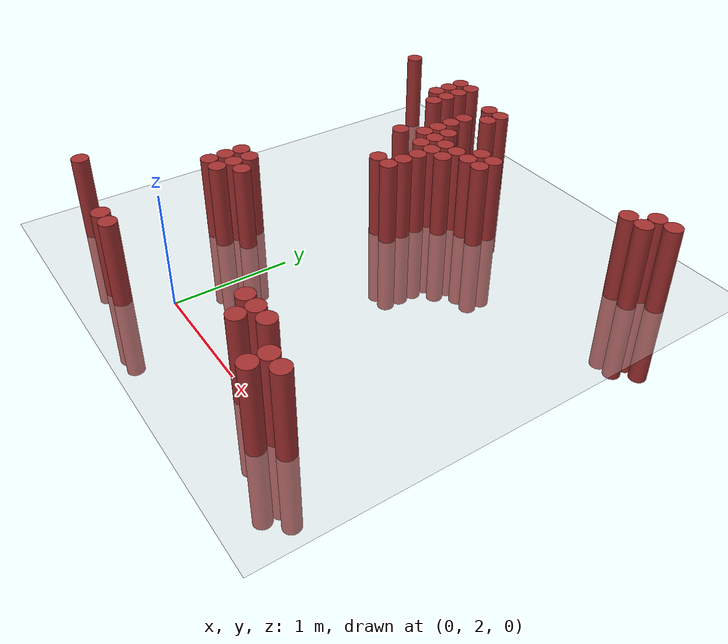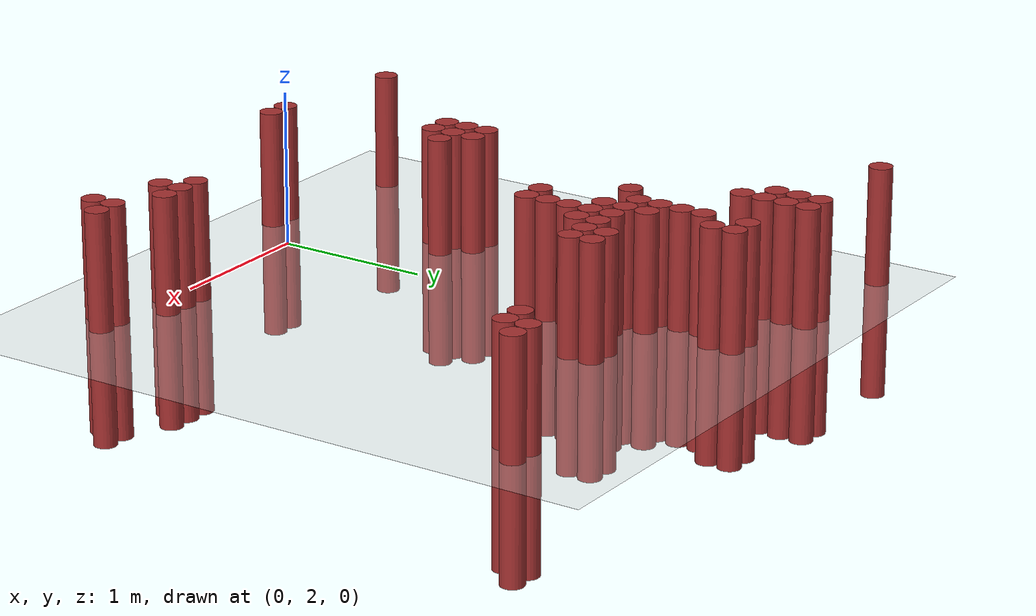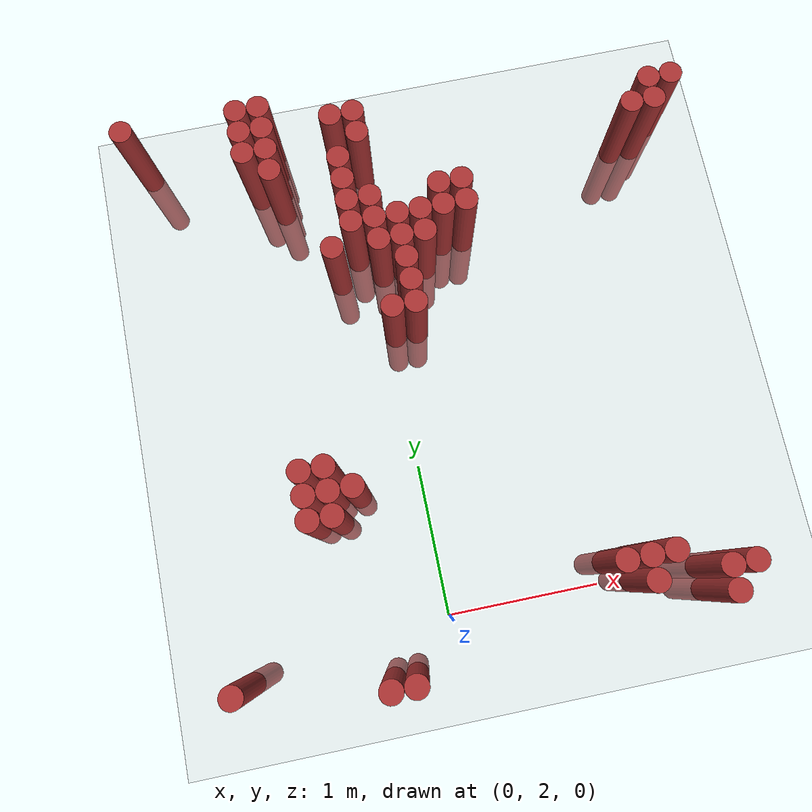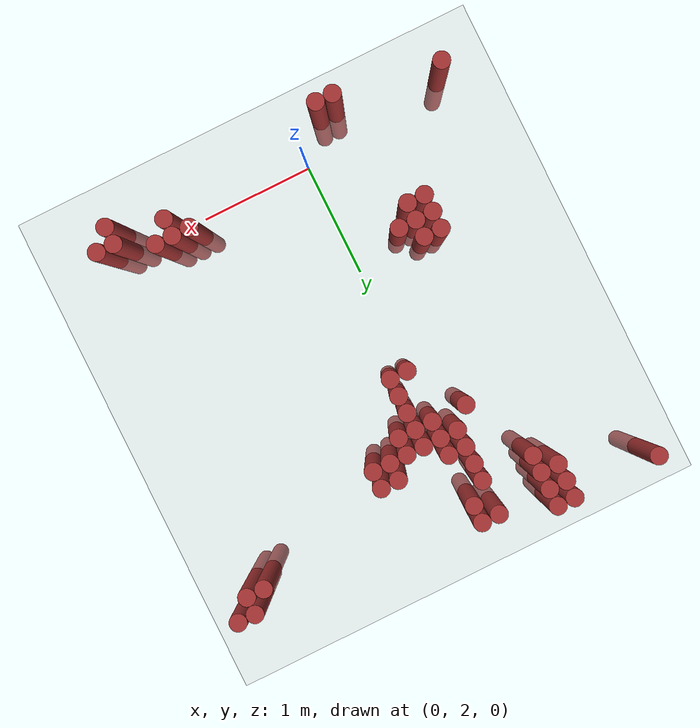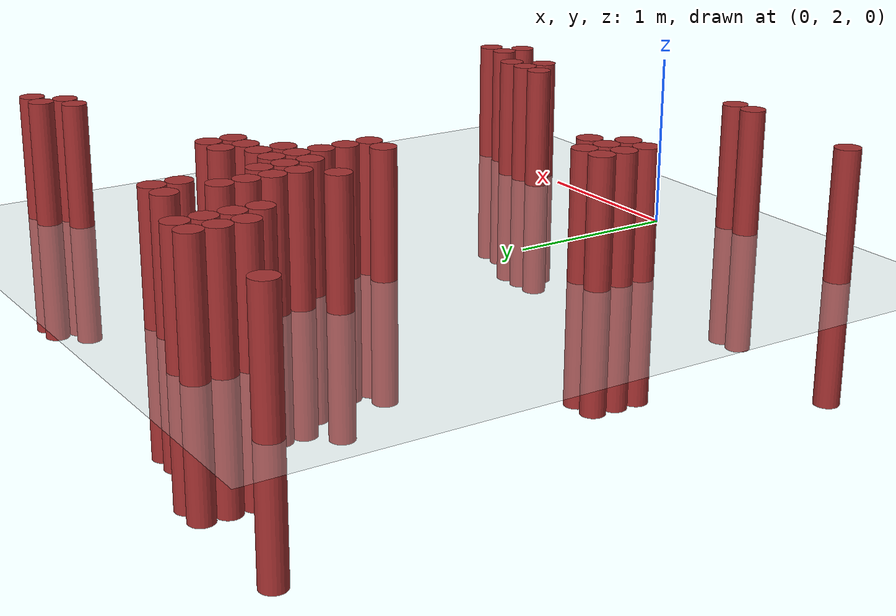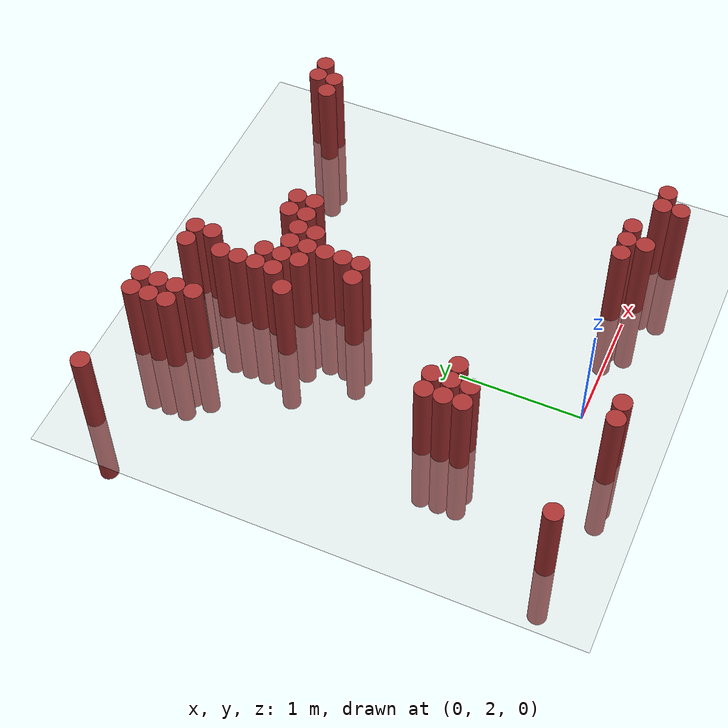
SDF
<sdf version="1.6">
 <world name="default">
  <model name="ground_plane">
   <static>1</static>
   <link name="link">
    <collision name="collision">
     <geometry><plane><normal>0 0 1</normal><size>100 100</size></plane></geometry>
     <surface><friction><ode><mu>100</mu><mu2>50</mu2></ode></friction></surface>
    </collision>
    <visual name="visual">
     <cast_shadows>0</cast_shadows>
     <geometry><plane><normal>0 0 1</normal><size>100 100</size></plane></geometry>
     <material>
      <script><uri>file://media/materials/scripts/gazebo.material</uri><name>Gazebo/Grey</name></script>
     </material>
    </visual>
   </link>
  </model>
  <model name="unit_cylinder_328">
   <static>1</static>
   <pose>-1.475000 5.425000 0.000000 0.000000 0.000000 0.000000</pose>
   <link name="link">
    <inertial>
     <mass>1</mass>
     <inertia><ixx>0.145833</ixx><ixy>0</ixy><ixz>0</ixz><iyy>0.145833</iyy><iyz>0</iyz><izz>0.125</izz></inertia>
    </inertial>
    <collision name="collision">
     <geometry><cylinder><radius>0.075000</radius><length>1.5</length></cylinder></geometry>
    </collision>
    <visual name="visual">
     <geometry><cylinder><radius>0.075000</radius><length>1.5</length></cylinder></geometry>
     <material>
      <ambient>0.648000 0.192000 0.192000 1</ambient>
      <diffuse>0.648000 0.192000 0.192000 1</diffuse>
     </material>
     <material>
      <script><name>Gazebo/Grey</name><uri>file://media/materials/scripts/gazebo.material</uri></script>
     </material>
    </visual>
   </link>
  </model>
  <model name="unit_cylinder_331">
   <static>1</static>
   <pose>-1.325000 1.825000 0.000000 0.000000 0.000000 0.000000</pose>
   <link name="link">
    <inertial>
     <mass>1</mass>
     <inertia><ixx>0.145833</ixx><ixy>0</ixy><ixz>0</ixz><iyy>0.145833</iyy><iyz>0</iyz><izz>0.125</izz></inertia>
    </inertial>
    <collision name="collision">
     <geometry><cylinder><radius>0.075000</radius><length>1.5</length></cylinder></geometry>
    </collision>
    <visual name="visual">
     <geometry><cylinder><radius>0.075000</radius><length>1.5</length></cylinder></geometry>
     <material>
      <ambient>0.648000 0.192000 0.192000 1</ambient>
      <diffuse>0.648000 0.192000 0.192000 1</diffuse>
     </material>
     <material>
      <script><name>Gazebo/Grey</name><uri>file://media/materials/scripts/gazebo.material</uri></script>
     </material>
    </visual>
   </link>
  </model>
  <model name="unit_cylinder_332">
   <static>1</static>
   <pose>-0.725000 2.725000 0.000000 0.000000 0.000000 0.000000</pose>
   <link name="link">
    <inertial>
     <mass>1</mass>
     <inertia><ixx>0.145833</ixx><ixy>0</ixy><ixz>0</ixz><iyy>0.145833</iyy><iyz>0</iyz><izz>0.125</izz></inertia>
    </inertial>
    <collision name="collision">
     <geometry><cylinder><radius>0.075000</radius><length>1.5</length></cylinder></geometry>
    </collision>
    <visual name="visual">
     <geometry><cylinder><radius>0.075000</radius><length>1.5</length></cylinder></geometry>
     <material>
      <ambient>0.648000 0.192000 0.192000 1</ambient>
      <diffuse>0.648000 0.192000 0.192000 1</diffuse>
     </material>
     <material>
      <script><name>Gazebo/Grey</name><uri>file://media/materials/scripts/gazebo.material</uri></script>
     </material>
    </visual>
   </link>
  </model>
  <model name="unit_cylinder_333">
   <static>1</static>
   <pose>-0.725000 2.875000 0.000000 0.000000 0.000000 0.000000</pose>
   <link name="link">
    <inertial>
     <mass>1</mass>
     <inertia><ixx>0.145833</ixx><ixy>0</ixy><ixz>0</ixz><iyy>0.145833</iyy><iyz>0</iyz><izz>0.125</izz></inertia>
    </inertial>
    <collision name="collision">
     <geometry><cylinder><radius>0.075000</radius><length>1.5</length></cylinder></geometry>
    </collision>
    <visual name="visual">
     <geometry><cylinder><radius>0.075000</radius><length>1.5</length></cylinder></geometry>
     <material>
      <ambient>0.648000 0.192000 0.192000 1</ambient>
      <diffuse>0.648000 0.192000 0.192000 1</diffuse>
     </material>
     <material>
      <script><name>Gazebo/Grey</name><uri>file://media/materials/scripts/gazebo.material</uri></script>
     </material>
    </visual>
   </link>
  </model>
  <model name="unit_cylinder_334">
   <static>1</static>
   <pose>-0.725000 3.025000 0.000000 0.000000 0.000000 0.000000</pose>
   <link name="link">
    <inertial>
     <mass>1</mass>
     <inertia><ixx>0.145833</ixx><ixy>0</ixy><ixz>0</ixz><iyy>0.145833</iyy><iyz>0</iyz><izz>0.125</izz></inertia>
    </inertial>
    <collision name="collision">
     <geometry><cylinder><radius>0.075000</radius><length>1.5</length></cylinder></geometry>
    </collision>
    <visual name="visual">
     <geometry><cylinder><radius>0.075000</radius><length>1.5</length></cylinder></geometry>
     <material>
      <ambient>0.648000 0.192000 0.192000 1</ambient>
      <diffuse>0.648000 0.192000 0.192000 1</diffuse>
     </material>
     <material>
      <script><name>Gazebo/Grey</name><uri>file://media/materials/scripts/gazebo.material</uri></script>
     </material>
    </visual>
   </link>
  </model>
  <model name="unit_cylinder_335">
   <static>1</static>
   <pose>-0.725000 5.125000 0.000000 0.000000 0.000000 0.000000</pose>
   <link name="link">
    <inertial>
     <mass>1</mass>
     <inertia><ixx>0.145833</ixx><ixy>0</ixy><ixz>0</ixz><iyy>0.145833</iyy><iyz>0</iyz><izz>0.125</izz></inertia>
    </inertial>
    <collision name="collision">
     <geometry><cylinder><radius>0.075000</radius><length>1.5</length></cylinder></geometry>
    </collision>
    <visual name="visual">
     <geometry><cylinder><radius>0.075000</radius><length>1.5</length></cylinder></geometry>
     <material>
      <ambient>0.648000 0.192000 0.192000 1</ambient>
      <diffuse>0.648000 0.192000 0.192000 1</diffuse>
     </material>
     <material>
      <script><name>Gazebo/Grey</name><uri>file://media/materials/scripts/gazebo.material</uri></script>
     </material>
    </visual>
   </link>
  </model>
  <model name="unit_cylinder_336">
   <static>1</static>
   <pose>-0.725000 5.275000 0.000000 0.000000 0.000000 0.000000</pose>
   <link name="link">
    <inertial>
     <mass>1</mass>
     <inertia><ixx>0.145833</ixx><ixy>0</ixy><ixz>0</ixz><iyy>0.145833</iyy><iyz>0</iyz><izz>0.125</izz></inertia>
    </inertial>
    <collision name="collision">
     <geometry><cylinder><radius>0.075000</radius><length>1.5</length></cylinder></geometry>
    </collision>
    <visual name="visual">
     <geometry><cylinder><radius>0.075000</radius><length>1.5</length></cylinder></geometry>
     <material>
      <ambient>0.648000 0.192000 0.192000 1</ambient>
      <diffuse>0.648000 0.192000 0.192000 1</diffuse>
     </material>
     <material>
      <script><name>Gazebo/Grey</name><uri>file://media/materials/scripts/gazebo.material</uri></script>
     </material>
    </visual>
   </link>
  </model>
  <model name="unit_cylinder_337">
   <static>1</static>
   <pose>-0.725000 5.425000 0.000000 0.000000 0.000000 0.000000</pose>
   <link name="link">
    <inertial>
     <mass>1</mass>
     <inertia><ixx>0.145833</ixx><ixy>0</ixy><ixz>0</ixz><iyy>0.145833</iyy><iyz>0</iyz><izz>0.125</izz></inertia>
    </inertial>
    <collision name="collision">
     <geometry><cylinder><radius>0.075000</radius><length>1.5</length></cylinder></geometry>
    </collision>
    <visual name="visual">
     <geometry><cylinder><radius>0.075000</radius><length>1.5</length></cylinder></geometry>
     <material>
      <ambient>0.648000 0.192000 0.192000 1</ambient>
      <diffuse>0.648000 0.192000 0.192000 1</diffuse>
     </material>
     <material>
      <script><name>Gazebo/Grey</name><uri>file://media/materials/scripts/gazebo.material</uri></script>
     </material>
    </visual>
   </link>
  </model>
  <model name="unit_cylinder_338">
   <static>1</static>
   <pose>-0.575000 2.725000 0.000000 0.000000 0.000000 0.000000</pose>
   <link name="link">
    <inertial>
     <mass>1</mass>
     <inertia><ixx>0.145833</ixx><ixy>0</ixy><ixz>0</ixz><iyy>0.145833</iyy><iyz>0</iyz><izz>0.125</izz></inertia>
    </inertial>
    <collision name="collision">
     <geometry><cylinder><radius>0.075000</radius><length>1.5</length></cylinder></geometry>
    </collision>
    <visual name="visual">
     <geometry><cylinder><radius>0.075000</radius><length>1.5</length></cylinder></geometry>
     <material>
      <ambient>0.648000 0.192000 0.192000 1</ambient>
      <diffuse>0.648000 0.192000 0.192000 1</diffuse>
     </material>
     <material>
      <script><name>Gazebo/Grey</name><uri>file://media/materials/scripts/gazebo.material</uri></script>
     </material>
    </visual>
   </link>
  </model>
  <model name="unit_cylinder_339">
   <static>1</static>
   <pose>-0.575000 2.875000 0.000000 0.000000 0.000000 0.000000</pose>
   <link name="link">
    <inertial>
     <mass>1</mass>
     <inertia><ixx>0.145833</ixx><ixy>0</ixy><ixz>0</ixz><iyy>0.145833</iyy><iyz>0</iyz><izz>0.125</izz></inertia>
    </inertial>
    <collision name="collision">
     <geometry><cylinder><radius>0.075000</radius><length>1.5</length></cylinder></geometry>
    </collision>
    <visual name="visual">
     <geometry><cylinder><radius>0.075000</radius><length>1.5</length></cylinder></geometry>
     <material>
      <ambient>0.648000 0.192000 0.192000 1</ambient>
      <diffuse>0.648000 0.192000 0.192000 1</diffuse>
     </material>
     <material>
      <script><name>Gazebo/Grey</name><uri>file://media/materials/scripts/gazebo.material</uri></script>
     </material>
    </visual>
   </link>
  </model>
  <model name="unit_cylinder_340">
   <static>1</static>
   <pose>-0.575000 3.025000 0.000000 0.000000 0.000000 0.000000</pose>
   <link name="link">
    <inertial>
     <mass>1</mass>
     <inertia><ixx>0.145833</ixx><ixy>0</ixy><ixz>0</ixz><iyy>0.145833</iyy><iyz>0</iyz><izz>0.125</izz></inertia>
    </inertial>
    <collision name="collision">
     <geometry><cylinder><radius>0.075000</radius><length>1.5</length></cylinder></geometry>
    </collision>
    <visual name="visual">
     <geometry><cylinder><radius>0.075000</radius><length>1.5</length></cylinder></geometry>
     <material>
      <ambient>0.648000 0.192000 0.192000 1</ambient>
      <diffuse>0.648000 0.192000 0.192000 1</diffuse>
     </material>
     <material>
      <script><name>Gazebo/Grey</name><uri>file://media/materials/scripts/gazebo.material</uri></script>
     </material>
    </visual>
   </link>
  </model>
  <model name="unit_cylinder_341">
   <static>1</static>
   <pose>-0.575000 4.975000 0.000000 0.000000 0.000000 0.000000</pose>
   <link name="link">
    <inertial>
     <mass>1</mass>
     <inertia><ixx>0.145833</ixx><ixy>0</ixy><ixz>0</ixz><iyy>0.145833</iyy><iyz>0</iyz><izz>0.125</izz></inertia>
    </inertial>
    <collision name="collision">
     <geometry><cylinder><radius>0.075000</radius><length>1.5</length></cylinder></geometry>
    </collision>
    <visual name="visual">
     <geometry><cylinder><radius>0.075000</radius><length>1.5</length></cylinder></geometry>
     <material>
      <ambient>0.648000 0.192000 0.192000 1</ambient>
      <diffuse>0.648000 0.192000 0.192000 1</diffuse>
     </material>
     <material>
      <script><name>Gazebo/Grey</name><uri>file://media/materials/scripts/gazebo.material</uri></script>
     </material>
    </visual>
   </link>
  </model>
  <model name="unit_cylinder_342">
   <static>1</static>
   <pose>-0.575000 5.125000 0.000000 0.000000 0.000000 0.000000</pose>
   <link name="link">
    <inertial>
     <mass>1</mass>
     <inertia><ixx>0.145833</ixx><ixy>0</ixy><ixz>0</ixz><iyy>0.145833</iyy><iyz>0</iyz><izz>0.125</izz></inertia>
    </inertial>
    <collision name="collision">
     <geometry><cylinder><radius>0.075000</radius><length>1.5</length></cylinder></geometry>
    </collision>
    <visual name="visual">
     <geometry><cylinder><radius>0.075000</radius><length>1.5</length></cylinder></geometry>
     <material>
      <ambient>0.648000 0.192000 0.192000 1</ambient>
      <diffuse>0.648000 0.192000 0.192000 1</diffuse>
     </material>
     <material>
      <script><name>Gazebo/Grey</name><uri>file://media/materials/scripts/gazebo.material</uri></script>
     </material>
    </visual>
   </link>
  </model>
  <model name="unit_cylinder_343">
   <static>1</static>
   <pose>-0.575000 5.275000 0.000000 0.000000 0.000000 0.000000</pose>
   <link name="link">
    <inertial>
     <mass>1</mass>
     <inertia><ixx>0.145833</ixx><ixy>0</ixy><ixz>0</ixz><iyy>0.145833</iyy><iyz>0</iyz><izz>0.125</izz></inertia>
    </inertial>
    <collision name="collision">
     <geometry><cylinder><radius>0.075000</radius><length>1.5</length></cylinder></geometry>
    </collision>
    <visual name="visual">
     <geometry><cylinder><radius>0.075000</radius><length>1.5</length></cylinder></geometry>
     <material>
      <ambient>0.648000 0.192000 0.192000 1</ambient>
      <diffuse>0.648000 0.192000 0.192000 1</diffuse>
     </material>
     <material>
      <script><name>Gazebo/Grey</name><uri>file://media/materials/scripts/gazebo.material</uri></script>
     </material>
    </visual>
   </link>
  </model>
  <model name="unit_cylinder_344">
   <static>1</static>
   <pose>-0.575000 5.425000 0.000000 0.000000 0.000000 0.000000</pose>
   <link name="link">
    <inertial>
     <mass>1</mass>
     <inertia><ixx>0.145833</ixx><ixy>0</ixy><ixz>0</ixz><iyy>0.145833</iyy><iyz>0</iyz><izz>0.125</izz></inertia>
    </inertial>
    <collision name="collision">
     <geometry><cylinder><radius>0.075000</radius><length>1.5</length></cylinder></geometry>
    </collision>
    <visual name="visual">
     <geometry><cylinder><radius>0.075000</radius><length>1.5</length></cylinder></geometry>
     <material>
      <ambient>0.648000 0.192000 0.192000 1</ambient>
      <diffuse>0.648000 0.192000 0.192000 1</diffuse>
     </material>
     <material>
      <script><name>Gazebo/Grey</name><uri>file://media/materials/scripts/gazebo.material</uri></script>
     </material>
    </visual>
   </link>
  </model>
  <model name="unit_cylinder_346">
   <static>1</static>
   <pose>-0.425000 1.675000 0.000000 0.000000 0.000000 0.000000</pose>
   <link name="link">
    <inertial>
     <mass>1</mass>
     <inertia><ixx>0.145833</ixx><ixy>0</ixy><ixz>0</ixz><iyy>0.145833</iyy><iyz>0</iyz><izz>0.125</izz></inertia>
    </inertial>
    <collision name="collision">
     <geometry><cylinder><radius>0.075000</radius><length>1.5</length></cylinder></geometry>
    </collision>
    <visual name="visual">
     <geometry><cylinder><radius>0.075000</radius><length>1.5</length></cylinder></geometry>
     <material>
      <ambient>0.648000 0.192000 0.192000 1</ambient>
      <diffuse>0.648000 0.192000 0.192000 1</diffuse>
     </material>
     <material>
      <script><name>Gazebo/Grey</name><uri>file://media/materials/scripts/gazebo.material</uri></script>
     </material>
    </visual>
   </link>
  </model>
  <model name="unit_cylinder_347">
   <static>1</static>
   <pose>-0.425000 2.875000 0.000000 0.000000 0.000000 0.000000</pose>
   <link name="link">
    <inertial>
     <mass>1</mass>
     <inertia><ixx>0.145833</ixx><ixy>0</ixy><ixz>0</ixz><iyy>0.145833</iyy><iyz>0</iyz><izz>0.125</izz></inertia>
    </inertial>
    <collision name="collision">
     <geometry><cylinder><radius>0.075000</radius><length>1.5</length></cylinder></geometry>
    </collision>
    <visual name="visual">
     <geometry><cylinder><radius>0.075000</radius><length>1.5</length></cylinder></geometry>
     <material>
      <ambient>0.648000 0.192000 0.192000 1</ambient>
      <diffuse>0.648000 0.192000 0.192000 1</diffuse>
     </material>
     <material>
      <script><name>Gazebo/Grey</name><uri>file://media/materials/scripts/gazebo.material</uri></script>
     </material>
    </visual>
   </link>
  </model>
  <model name="unit_cylinder_350">
   <static>1</static>
   <pose>-0.275000 1.675000 0.000000 0.000000 0.000000 0.000000</pose>
   <link name="link">
    <inertial>
     <mass>1</mass>
     <inertia><ixx>0.145833</ixx><ixy>0</ixy><ixz>0</ixz><iyy>0.145833</iyy><iyz>0</iyz><izz>0.125</izz></inertia>
    </inertial>
    <collision name="collision">
     <geometry><cylinder><radius>0.075000</radius><length>1.5</length></cylinder></geometry>
    </collision>
    <visual name="visual">
     <geometry><cylinder><radius>0.075000</radius><length>1.5</length></cylinder></geometry>
     <material>
      <ambient>0.648000 0.192000 0.192000 1</ambient>
      <diffuse>0.648000 0.192000 0.192000 1</diffuse>
     </material>
     <material>
      <script><name>Gazebo/Grey</name><uri>file://media/materials/scripts/gazebo.material</uri></script>
     </material>
    </visual>
   </link>
  </model>
  <model name="unit_cylinder_351">
   <static>1</static>
   <pose>-0.275000 4.375000 0.000000 0.000000 0.000000 0.000000</pose>
   <link name="link">
    <inertial>
     <mass>1</mass>
     <inertia><ixx>0.145833</ixx><ixy>0</ixy><ixz>0</ixz><iyy>0.145833</iyy><iyz>0</iyz><izz>0.125</izz></inertia>
    </inertial>
    <collision name="collision">
     <geometry><cylinder><radius>0.075000</radius><length>1.5</length></cylinder></geometry>
    </collision>
    <visual name="visual">
     <geometry><cylinder><radius>0.075000</radius><length>1.5</length></cylinder></geometry>
     <material>
      <ambient>0.648000 0.192000 0.192000 1</ambient>
      <diffuse>0.648000 0.192000 0.192000 1</diffuse>
     </material>
     <material>
      <script><name>Gazebo/Grey</name><uri>file://media/materials/scripts/gazebo.material</uri></script>
     </material>
    </visual>
   </link>
  </model>
  <model name="unit_cylinder_354">
   <static>1</static>
   <pose>-0.125000 4.525000 0.000000 0.000000 0.000000 0.000000</pose>
   <link name="link">
    <inertial>
     <mass>1</mass>
     <inertia><ixx>0.145833</ixx><ixy>0</ixy><ixz>0</ixz><iyy>0.145833</iyy><iyz>0</iyz><izz>0.125</izz></inertia>
    </inertial>
    <collision name="collision">
     <geometry><cylinder><radius>0.075000</radius><length>1.5</length></cylinder></geometry>
    </collision>
    <visual name="visual">
     <geometry><cylinder><radius>0.075000</radius><length>1.5</length></cylinder></geometry>
     <material>
      <ambient>0.648000 0.192000 0.192000 1</ambient>
      <diffuse>0.648000 0.192000 0.192000 1</diffuse>
     </material>
     <material>
      <script><name>Gazebo/Grey</name><uri>file://media/materials/scripts/gazebo.material</uri></script>
     </material>
    </visual>
   </link>
  </model>
  <model name="unit_cylinder_355">
   <static>1</static>
   <pose>-0.125000 4.675000 0.000000 0.000000 0.000000 0.000000</pose>
   <link name="link">
    <inertial>
     <mass>1</mass>
     <inertia><ixx>0.145833</ixx><ixy>0</ixy><ixz>0</ixz><iyy>0.145833</iyy><iyz>0</iyz><izz>0.125</izz></inertia>
    </inertial>
    <collision name="collision">
     <geometry><cylinder><radius>0.075000</radius><length>1.5</length></cylinder></geometry>
    </collision>
    <visual name="visual">
     <geometry><cylinder><radius>0.075000</radius><length>1.5</length></cylinder></geometry>
     <material>
      <ambient>0.648000 0.192000 0.192000 1</ambient>
      <diffuse>0.648000 0.192000 0.192000 1</diffuse>
     </material>
     <material>
      <script><name>Gazebo/Grey</name><uri>file://media/materials/scripts/gazebo.material</uri></script>
     </material>
    </visual>
   </link>
  </model>
  <model name="unit_cylinder_356">
   <static>1</static>
   <pose>-0.125000 4.825000 0.000000 0.000000 0.000000 0.000000</pose>
   <link name="link">
    <inertial>
     <mass>1</mass>
     <inertia><ixx>0.145833</ixx><ixy>0</ixy><ixz>0</ixz><iyy>0.145833</iyy><iyz>0</iyz><izz>0.125</izz></inertia>
    </inertial>
    <collision name="collision">
     <geometry><cylinder><radius>0.075000</radius><length>1.5</length></cylinder></geometry>
    </collision>
    <visual name="visual">
     <geometry><cylinder><radius>0.075000</radius><length>1.5</length></cylinder></geometry>
     <material>
      <ambient>0.648000 0.192000 0.192000 1</ambient>
      <diffuse>0.648000 0.192000 0.192000 1</diffuse>
     </material>
     <material>
      <script><name>Gazebo/Grey</name><uri>file://media/materials/scripts/gazebo.material</uri></script>
     </material>
    </visual>
   </link>
  </model>
  <model name="unit_cylinder_357">
   <static>1</static>
   <pose>-0.125000 4.975000 0.000000 0.000000 0.000000 0.000000</pose>
   <link name="link">
    <inertial>
     <mass>1</mass>
     <inertia><ixx>0.145833</ixx><ixy>0</ixy><ixz>0</ixz><iyy>0.145833</iyy><iyz>0</iyz><izz>0.125</izz></inertia>
    </inertial>
    <collision name="collision">
     <geometry><cylinder><radius>0.075000</radius><length>1.5</length></cylinder></geometry>
    </collision>
    <visual name="visual">
     <geometry><cylinder><radius>0.075000</radius><length>1.5</length></cylinder></geometry>
     <material>
      <ambient>0.648000 0.192000 0.192000 1</ambient>
      <diffuse>0.648000 0.192000 0.192000 1</diffuse>
     </material>
     <material>
      <script><name>Gazebo/Grey</name><uri>file://media/materials/scripts/gazebo.material</uri></script>
     </material>
    </visual>
   </link>
  </model>
  <model name="unit_cylinder_358">
   <static>1</static>
   <pose>-0.125000 5.275000 0.000000 0.000000 0.000000 0.000000</pose>
   <link name="link">
    <inertial>
     <mass>1</mass>
     <inertia><ixx>0.145833</ixx><ixy>0</ixy><ixz>0</ixz><iyy>0.145833</iyy><iyz>0</iyz><izz>0.125</izz></inertia>
    </inertial>
    <collision name="collision">
     <geometry><cylinder><radius>0.075000</radius><length>1.5</length></cylinder></geometry>
    </collision>
    <visual name="visual">
     <geometry><cylinder><radius>0.075000</radius><length>1.5</length></cylinder></geometry>
     <material>
      <ambient>0.648000 0.192000 0.192000 1</ambient>
      <diffuse>0.648000 0.192000 0.192000 1</diffuse>
     </material>
     <material>
      <script><name>Gazebo/Grey</name><uri>file://media/materials/scripts/gazebo.material</uri></script>
     </material>
    </visual>
   </link>
  </model>
  <model name="unit_cylinder_361">
   <static>1</static>
   <pose>0.025000 3.925000 0.000000 0.000000 0.000000 0.000000</pose>
   <link name="link">
    <inertial>
     <mass>1</mass>
     <inertia><ixx>0.145833</ixx><ixy>0</ixy><ixz>0</ixz><iyy>0.145833</iyy><iyz>0</iyz><izz>0.125</izz></inertia>
    </inertial>
    <collision name="collision">
     <geometry><cylinder><radius>0.075000</radius><length>1.5</length></cylinder></geometry>
    </collision>
    <visual name="visual">
     <geometry><cylinder><radius>0.075000</radius><length>1.5</length></cylinder></geometry>
     <material>
      <ambient>0.648000 0.192000 0.192000 1</ambient>
      <diffuse>0.648000 0.192000 0.192000 1</diffuse>
     </material>
     <material>
      <script><name>Gazebo/Grey</name><uri>file://media/materials/scripts/gazebo.material</uri></script>
     </material>
    </visual>
   </link>
  </model>
  <model name="unit_cylinder_362">
   <static>1</static>
   <pose>0.025000 4.375000 0.000000 0.000000 0.000000 0.000000</pose>
   <link name="link">
    <inertial>
     <mass>1</mass>
     <inertia><ixx>0.145833</ixx><ixy>0</ixy><ixz>0</ixz><iyy>0.145833</iyy><iyz>0</iyz><izz>0.125</izz></inertia>
    </inertial>
    <collision name="collision">
     <geometry><cylinder><radius>0.075000</radius><length>1.5</length></cylinder></geometry>
    </collision>
    <visual name="visual">
     <geometry><cylinder><radius>0.075000</radius><length>1.5</length></cylinder></geometry>
     <material>
      <ambient>0.648000 0.192000 0.192000 1</ambient>
      <diffuse>0.648000 0.192000 0.192000 1</diffuse>
     </material>
     <material>
      <script><name>Gazebo/Grey</name><uri>file://media/materials/scripts/gazebo.material</uri></script>
     </material>
    </visual>
   </link>
  </model>
  <model name="unit_cylinder_363">
   <static>1</static>
   <pose>0.025000 4.525000 0.000000 0.000000 0.000000 0.000000</pose>
   <link name="link">
    <inertial>
     <mass>1</mass>
     <inertia><ixx>0.145833</ixx><ixy>0</ixy><ixz>0</ixz><iyy>0.145833</iyy><iyz>0</iyz><izz>0.125</izz></inertia>
    </inertial>
    <collision name="collision">
     <geometry><cylinder><radius>0.075000</radius><length>1.5</length></cylinder></geometry>
    </collision>
    <visual name="visual">
     <geometry><cylinder><radius>0.075000</radius><length>1.5</length></cylinder></geometry>
     <material>
      <ambient>0.648000 0.192000 0.192000 1</ambient>
      <diffuse>0.648000 0.192000 0.192000 1</diffuse>
     </material>
     <material>
      <script><name>Gazebo/Grey</name><uri>file://media/materials/scripts/gazebo.material</uri></script>
     </material>
    </visual>
   </link>
  </model>
  <model name="unit_cylinder_364">
   <static>1</static>
   <pose>0.025000 4.675000 0.000000 0.000000 0.000000 0.000000</pose>
   <link name="link">
    <inertial>
     <mass>1</mass>
     <inertia><ixx>0.145833</ixx><ixy>0</ixy><ixz>0</ixz><iyy>0.145833</iyy><iyz>0</iyz><izz>0.125</izz></inertia>
    </inertial>
    <collision name="collision">
     <geometry><cylinder><radius>0.075000</radius><length>1.5</length></cylinder></geometry>
    </collision>
    <visual name="visual">
     <geometry><cylinder><radius>0.075000</radius><length>1.5</length></cylinder></geometry>
     <material>
      <ambient>0.648000 0.192000 0.192000 1</ambient>
      <diffuse>0.648000 0.192000 0.192000 1</diffuse>
     </material>
     <material>
      <script><name>Gazebo/Grey</name><uri>file://media/materials/scripts/gazebo.material</uri></script>
     </material>
    </visual>
   </link>
  </model>
  <model name="unit_cylinder_365">
   <static>1</static>
   <pose>0.025000 5.125000 0.000000 0.000000 0.000000 0.000000</pose>
   <link name="link">
    <inertial>
     <mass>1</mass>
     <inertia><ixx>0.145833</ixx><ixy>0</ixy><ixz>0</ixz><iyy>0.145833</iyy><iyz>0</iyz><izz>0.125</izz></inertia>
    </inertial>
    <collision name="collision">
     <geometry><cylinder><radius>0.075000</radius><length>1.5</length></cylinder></geometry>
    </collision>
    <visual name="visual">
     <geometry><cylinder><radius>0.075000</radius><length>1.5</length></cylinder></geometry>
     <material>
      <ambient>0.648000 0.192000 0.192000 1</ambient>
      <diffuse>0.648000 0.192000 0.192000 1</diffuse>
     </material>
     <material>
      <script><name>Gazebo/Grey</name><uri>file://media/materials/scripts/gazebo.material</uri></script>
     </material>
    </visual>
   </link>
  </model>
  <model name="unit_cylinder_366">
   <static>1</static>
   <pose>0.025000 5.275000 0.000000 0.000000 0.000000 0.000000</pose>
   <link name="link">
    <inertial>
     <mass>1</mass>
     <inertia><ixx>0.145833</ixx><ixy>0</ixy><ixz>0</ixz><iyy>0.145833</iyy><iyz>0</iyz><izz>0.125</izz></inertia>
    </inertial>
    <collision name="collision">
     <geometry><cylinder><radius>0.075000</radius><length>1.5</length></cylinder></geometry>
    </collision>
    <visual name="visual">
     <geometry><cylinder><radius>0.075000</radius><length>1.5</length></cylinder></geometry>
     <material>
      <ambient>0.648000 0.192000 0.192000 1</ambient>
      <diffuse>0.648000 0.192000 0.192000 1</diffuse>
     </material>
     <material>
      <script><name>Gazebo/Grey</name><uri>file://media/materials/scripts/gazebo.material</uri></script>
     </material>
    </visual>
   </link>
  </model>
  <model name="unit_cylinder_369">
   <static>1</static>
   <pose>0.175000 3.925000 0.000000 0.000000 0.000000 0.000000</pose>
   <link name="link">
    <inertial>
     <mass>1</mass>
     <inertia><ixx>0.145833</ixx><ixy>0</ixy><ixz>0</ixz><iyy>0.145833</iyy><iyz>0</iyz><izz>0.125</izz></inertia>
    </inertial>
    <collision name="collision">
     <geometry><cylinder><radius>0.075000</radius><length>1.5</length></cylinder></geometry>
    </collision>
    <visual name="visual">
     <geometry><cylinder><radius>0.075000</radius><length>1.5</length></cylinder></geometry>
     <material>
      <ambient>0.648000 0.192000 0.192000 1</ambient>
      <diffuse>0.648000 0.192000 0.192000 1</diffuse>
     </material>
     <material>
      <script><name>Gazebo/Grey</name><uri>file://media/materials/scripts/gazebo.material</uri></script>
     </material>
    </visual>
   </link>
  </model>
  <model name="unit_cylinder_370">
   <static>1</static>
   <pose>0.175000 4.075000 0.000000 0.000000 0.000000 0.000000</pose>
   <link name="link">
    <inertial>
     <mass>1</mass>
     <inertia><ixx>0.145833</ixx><ixy>0</ixy><ixz>0</ixz><iyy>0.145833</iyy><iyz>0</iyz><izz>0.125</izz></inertia>
    </inertial>
    <collision name="collision">
     <geometry><cylinder><radius>0.075000</radius><length>1.5</length></cylinder></geometry>
    </collision>
    <visual name="visual">
     <geometry><cylinder><radius>0.075000</radius><length>1.5</length></cylinder></geometry>
     <material>
      <ambient>0.648000 0.192000 0.192000 1</ambient>
      <diffuse>0.648000 0.192000 0.192000 1</diffuse>
     </material>
     <material>
      <script><name>Gazebo/Grey</name><uri>file://media/materials/scripts/gazebo.material</uri></script>
     </material>
    </visual>
   </link>
  </model>
  <model name="unit_cylinder_371">
   <static>1</static>
   <pose>0.175000 4.225000 0.000000 0.000000 0.000000 0.000000</pose>
   <link name="link">
    <inertial>
     <mass>1</mass>
     <inertia><ixx>0.145833</ixx><ixy>0</ixy><ixz>0</ixz><iyy>0.145833</iyy><iyz>0</iyz><izz>0.125</izz></inertia>
    </inertial>
    <collision name="collision">
     <geometry><cylinder><radius>0.075000</radius><length>1.5</length></cylinder></geometry>
    </collision>
    <visual name="visual">
     <geometry><cylinder><radius>0.075000</radius><length>1.5</length></cylinder></geometry>
     <material>
      <ambient>0.648000 0.192000 0.192000 1</ambient>
      <diffuse>0.648000 0.192000 0.192000 1</diffuse>
     </material>
     <material>
      <script><name>Gazebo/Grey</name><uri>file://media/materials/scripts/gazebo.material</uri></script>
     </material>
    </visual>
   </link>
  </model>
  <model name="unit_cylinder_372">
   <static>1</static>
   <pose>0.175000 4.375000 0.000000 0.000000 0.000000 0.000000</pose>
   <link name="link">
    <inertial>
     <mass>1</mass>
     <inertia><ixx>0.145833</ixx><ixy>0</ixy><ixz>0</ixz><iyy>0.145833</iyy><iyz>0</iyz><izz>0.125</izz></inertia>
    </inertial>
    <collision name="collision">
     <geometry><cylinder><radius>0.075000</radius><length>1.5</length></cylinder></geometry>
    </collision>
    <visual name="visual">
     <geometry><cylinder><radius>0.075000</radius><length>1.5</length></cylinder></geometry>
     <material>
      <ambient>0.648000 0.192000 0.192000 1</ambient>
      <diffuse>0.648000 0.192000 0.192000 1</diffuse>
     </material>
     <material>
      <script><name>Gazebo/Grey</name><uri>file://media/materials/scripts/gazebo.material</uri></script>
     </material>
    </visual>
   </link>
  </model>
  <model name="unit_cylinder_373">
   <static>1</static>
   <pose>0.175000 4.525000 0.000000 0.000000 0.000000 0.000000</pose>
   <link name="link">
    <inertial>
     <mass>1</mass>
     <inertia><ixx>0.145833</ixx><ixy>0</ixy><ixz>0</ixz><iyy>0.145833</iyy><iyz>0</iyz><izz>0.125</izz></inertia>
    </inertial>
    <collision name="collision">
     <geometry><cylinder><radius>0.075000</radius><length>1.5</length></cylinder></geometry>
    </collision>
    <visual name="visual">
     <geometry><cylinder><radius>0.075000</radius><length>1.5</length></cylinder></geometry>
     <material>
      <ambient>0.648000 0.192000 0.192000 1</ambient>
      <diffuse>0.648000 0.192000 0.192000 1</diffuse>
     </material>
     <material>
      <script><name>Gazebo/Grey</name><uri>file://media/materials/scripts/gazebo.material</uri></script>
     </material>
    </visual>
   </link>
  </model>
  <model name="unit_cylinder_375">
   <static>1</static>
   <pose>0.325000 4.375000 0.000000 0.000000 0.000000 0.000000</pose>
   <link name="link">
    <inertial>
     <mass>1</mass>
     <inertia><ixx>0.145833</ixx><ixy>0</ixy><ixz>0</ixz><iyy>0.145833</iyy><iyz>0</iyz><izz>0.125</izz></inertia>
    </inertial>
    <collision name="collision">
     <geometry><cylinder><radius>0.075000</radius><length>1.5</length></cylinder></geometry>
    </collision>
    <visual name="visual">
     <geometry><cylinder><radius>0.075000</radius><length>1.5</length></cylinder></geometry>
     <material>
      <ambient>0.648000 0.192000 0.192000 1</ambient>
      <diffuse>0.648000 0.192000 0.192000 1</diffuse>
     </material>
     <material>
      <script><name>Gazebo/Grey</name><uri>file://media/materials/scripts/gazebo.material</uri></script>
     </material>
    </visual>
   </link>
  </model>
  <model name="unit_cylinder_376">
   <static>1</static>
   <pose>0.325000 4.525000 0.000000 0.000000 0.000000 0.000000</pose>
   <link name="link">
    <inertial>
     <mass>1</mass>
     <inertia><ixx>0.145833</ixx><ixy>0</ixy><ixz>0</ixz><iyy>0.145833</iyy><iyz>0</iyz><izz>0.125</izz></inertia>
    </inertial>
    <collision name="collision">
     <geometry><cylinder><radius>0.075000</radius><length>1.5</length></cylinder></geometry>
    </collision>
    <visual name="visual">
     <geometry><cylinder><radius>0.075000</radius><length>1.5</length></cylinder></geometry>
     <material>
      <ambient>0.648000 0.192000 0.192000 1</ambient>
      <diffuse>0.648000 0.192000 0.192000 1</diffuse>
     </material>
     <material>
      <script><name>Gazebo/Grey</name><uri>file://media/materials/scripts/gazebo.material</uri></script>
     </material>
    </visual>
   </link>
  </model>
  <model name="unit_cylinder_377">
   <static>1</static>
   <pose>0.475000 4.525000 0.000000 0.000000 0.000000 0.000000</pose>
   <link name="link">
    <inertial>
     <mass>1</mass>
     <inertia><ixx>0.145833</ixx><ixy>0</ixy><ixz>0</ixz><iyy>0.145833</iyy><iyz>0</iyz><izz>0.125</izz></inertia>
    </inertial>
    <collision name="collision">
     <geometry><cylinder><radius>0.075000</radius><length>1.5</length></cylinder></geometry>
    </collision>
    <visual name="visual">
     <geometry><cylinder><radius>0.075000</radius><length>1.5</length></cylinder></geometry>
     <material>
      <ambient>0.648000 0.192000 0.192000 1</ambient>
      <diffuse>0.648000 0.192000 0.192000 1</diffuse>
     </material>
     <material>
      <script><name>Gazebo/Grey</name><uri>file://media/materials/scripts/gazebo.material</uri></script>
     </material>
    </visual>
   </link>
  </model>
  <model name="unit_cylinder_378">
   <static>1</static>
   <pose>0.475000 4.675000 0.000000 0.000000 0.000000 0.000000</pose>
   <link name="link">
    <inertial>
     <mass>1</mass>
     <inertia><ixx>0.145833</ixx><ixy>0</ixy><ixz>0</ixz><iyy>0.145833</iyy><iyz>0</iyz><izz>0.125</izz></inertia>
    </inertial>
    <collision name="collision">
     <geometry><cylinder><radius>0.075000</radius><length>1.5</length></cylinder></geometry>
    </collision>
    <visual name="visual">
     <geometry><cylinder><radius>0.075000</radius><length>1.5</length></cylinder></geometry>
     <material>
      <ambient>0.648000 0.192000 0.192000 1</ambient>
      <diffuse>0.648000 0.192000 0.192000 1</diffuse>
     </material>
     <material>
      <script><name>Gazebo/Grey</name><uri>file://media/materials/scripts/gazebo.material</uri></script>
     </material>
    </visual>
   </link>
  </model>
  <model name="unit_cylinder_379">
   <static>1</static>
   <pose>0.625000 4.525000 0.000000 0.000000 0.000000 0.000000</pose>
   <link name="link">
    <inertial>
     <mass>1</mass>
     <inertia><ixx>0.145833</ixx><ixy>0</ixy><ixz>0</ixz><iyy>0.145833</iyy><iyz>0</iyz><izz>0.125</izz></inertia>
    </inertial>
    <collision name="collision">
     <geometry><cylinder><radius>0.075000</radius><length>1.5</length></cylinder></geometry>
    </collision>
    <visual name="visual">
     <geometry><cylinder><radius>0.075000</radius><length>1.5</length></cylinder></geometry>
     <material>
      <ambient>0.648000 0.192000 0.192000 1</ambient>
      <diffuse>0.648000 0.192000 0.192000 1</diffuse>
     </material>
     <material>
      <script><name>Gazebo/Grey</name><uri>file://media/materials/scripts/gazebo.material</uri></script>
     </material>
    </visual>
   </link>
  </model>
  <model name="unit_cylinder_380">
   <static>1</static>
   <pose>0.625000 4.675000 0.000000 0.000000 0.000000 0.000000</pose>
   <link name="link">
    <inertial>
     <mass>1</mass>
     <inertia><ixx>0.145833</ixx><ixy>0</ixy><ixz>0</ixz><iyy>0.145833</iyy><iyz>0</iyz><izz>0.125</izz></inertia>
    </inertial>
    <collision name="collision">
     <geometry><cylinder><radius>0.075000</radius><length>1.5</length></cylinder></geometry>
    </collision>
    <visual name="visual">
     <geometry><cylinder><radius>0.075000</radius><length>1.5</length></cylinder></geometry>
     <material>
      <ambient>0.648000 0.192000 0.192000 1</ambient>
      <diffuse>0.648000 0.192000 0.192000 1</diffuse>
     </material>
     <material>
      <script><name>Gazebo/Grey</name><uri>file://media/materials/scripts/gazebo.material</uri></script>
     </material>
    </visual>
   </link>
  </model>
  <model name="unit_cylinder_381">
   <static>1</static>
   <pose>1.075000 2.125000 0.000000 0.000000 0.000000 0.000000</pose>
   <link name="link">
    <inertial>
     <mass>1</mass>
     <inertia><ixx>0.145833</ixx><ixy>0</ixy><ixz>0</ixz><iyy>0.145833</iyy><iyz>0</iyz><izz>0.125</izz></inertia>
    </inertial>
    <collision name="collision">
     <geometry><cylinder><radius>0.075000</radius><length>1.5</length></cylinder></geometry>
    </collision>
    <visual name="visual">
     <geometry><cylinder><radius>0.075000</radius><length>1.5</length></cylinder></geometry>
     <material>
      <ambient>0.648000 0.192000 0.192000 1</ambient>
      <diffuse>0.648000 0.192000 0.192000 1</diffuse>
     </material>
     <material>
      <script><name>Gazebo/Grey</name><uri>file://media/materials/scripts/gazebo.material</uri></script>
     </material>
    </visual>
   </link>
  </model>
  <model name="unit_cylinder_384">
   <static>1</static>
   <pose>1.225000 1.975000 0.000000 0.000000 0.000000 0.000000</pose>
   <link name="link">
    <inertial>
     <mass>1</mass>
     <inertia><ixx>0.145833</ixx><ixy>0</ixy><ixz>0</ixz><iyy>0.145833</iyy><iyz>0</iyz><izz>0.125</izz></inertia>
    </inertial>
    <collision name="collision">
     <geometry><cylinder><radius>0.075000</radius><length>1.5</length></cylinder></geometry>
    </collision>
    <visual name="visual">
     <geometry><cylinder><radius>0.075000</radius><length>1.5</length></cylinder></geometry>
     <material>
      <ambient>0.648000 0.192000 0.192000 1</ambient>
      <diffuse>0.648000 0.192000 0.192000 1</diffuse>
     </material>
     <material>
      <script><name>Gazebo/Grey</name><uri>file://media/materials/scripts/gazebo.material</uri></script>
     </material>
    </visual>
   </link>
  </model>
  <model name="unit_cylinder_385">
   <static>1</static>
   <pose>1.225000 2.125000 0.000000 0.000000 0.000000 0.000000</pose>
   <link name="link">
    <inertial>
     <mass>1</mass>
     <inertia><ixx>0.145833</ixx><ixy>0</ixy><ixz>0</ixz><iyy>0.145833</iyy><iyz>0</iyz><izz>0.125</izz></inertia>
    </inertial>
    <collision name="collision">
     <geometry><cylinder><radius>0.075000</radius><length>1.5</length></cylinder></geometry>
    </collision>
    <visual name="visual">
     <geometry><cylinder><radius>0.075000</radius><length>1.5</length></cylinder></geometry>
     <material>
      <ambient>0.648000 0.192000 0.192000 1</ambient>
      <diffuse>0.648000 0.192000 0.192000 1</diffuse>
     </material>
     <material>
      <script><name>Gazebo/Grey</name><uri>file://media/materials/scripts/gazebo.material</uri></script>
     </material>
    </visual>
   </link>
  </model>
  <model name="unit_cylinder_387">
   <static>1</static>
   <pose>1.375000 2.125000 0.000000 0.000000 0.000000 0.000000</pose>
   <link name="link">
    <inertial>
     <mass>1</mass>
     <inertia><ixx>0.145833</ixx><ixy>0</ixy><ixz>0</ixz><iyy>0.145833</iyy><iyz>0</iyz><izz>0.125</izz></inertia>
    </inertial>
    <collision name="collision">
     <geometry><cylinder><radius>0.075000</radius><length>1.5</length></cylinder></geometry>
    </collision>
    <visual name="visual">
     <geometry><cylinder><radius>0.075000</radius><length>1.5</length></cylinder></geometry>
     <material>
      <ambient>0.648000 0.192000 0.192000 1</ambient>
      <diffuse>0.648000 0.192000 0.192000 1</diffuse>
     </material>
     <material>
      <script><name>Gazebo/Grey</name><uri>file://media/materials/scripts/gazebo.material</uri></script>
     </material>
    </visual>
   </link>
  </model>
  <model name="unit_cylinder_392">
   <static>1</static>
   <pose>1.675000 1.825000 0.000000 0.000000 0.000000 0.000000</pose>
   <link name="link">
    <inertial>
     <mass>1</mass>
     <inertia><ixx>0.145833</ixx><ixy>0</ixy><ixz>0</ixz><iyy>0.145833</iyy><iyz>0</iyz><izz>0.125</izz></inertia>
    </inertial>
    <collision name="collision">
     <geometry><cylinder><radius>0.075000</radius><length>1.5</length></cylinder></geometry>
    </collision>
    <visual name="visual">
     <geometry><cylinder><radius>0.075000</radius><length>1.5</length></cylinder></geometry>
     <material>
      <ambient>0.648000 0.192000 0.192000 1</ambient>
      <diffuse>0.648000 0.192000 0.192000 1</diffuse>
     </material>
     <material>
      <script><name>Gazebo/Grey</name><uri>file://media/materials/scripts/gazebo.material</uri></script>
     </material>
    </visual>
   </link>
  </model>
  <model name="unit_cylinder_393">
   <static>1</static>
   <pose>1.675000 1.975000 0.000000 0.000000 0.000000 0.000000</pose>
   <link name="link">
    <inertial>
     <mass>1</mass>
     <inertia><ixx>0.145833</ixx><ixy>0</ixy><ixz>0</ixz><iyy>0.145833</iyy><iyz>0</iyz><izz>0.125</izz></inertia>
    </inertial>
    <collision name="collision">
     <geometry><cylinder><radius>0.075000</radius><length>1.5</length></cylinder></geometry>
    </collision>
    <visual name="visual">
     <geometry><cylinder><radius>0.075000</radius><length>1.5</length></cylinder></geometry>
     <material>
      <ambient>0.648000 0.192000 0.192000 1</ambient>
      <diffuse>0.648000 0.192000 0.192000 1</diffuse>
     </material>
     <material>
      <script><name>Gazebo/Grey</name><uri>file://media/materials/scripts/gazebo.material</uri></script>
     </material>
    </visual>
   </link>
  </model>
  <model name="unit_cylinder_396">
   <static>1</static>
   <pose>1.825000 1.975000 0.000000 0.000000 0.000000 0.000000</pose>
   <link name="link">
    <inertial>
     <mass>1</mass>
     <inertia><ixx>0.145833</ixx><ixy>0</ixy><ixz>0</ixz><iyy>0.145833</iyy><iyz>0</iyz><izz>0.125</izz></inertia>
    </inertial>
    <collision name="collision">
     <geometry><cylinder><radius>0.075000</radius><length>1.5</length></cylinder></geometry>
    </collision>
    <visual name="visual">
     <geometry><cylinder><radius>0.075000</radius><length>1.5</length></cylinder></geometry>
     <material>
      <ambient>0.648000 0.192000 0.192000 1</ambient>
      <diffuse>0.648000 0.192000 0.192000 1</diffuse>
     </material>
     <material>
      <script><name>Gazebo/Grey</name><uri>file://media/materials/scripts/gazebo.material</uri></script>
     </material>
    </visual>
   </link>
  </model>
  <model name="unit_cylinder_397">
   <static>1</static>
   <pose>1.825000 4.975000 0.000000 0.000000 0.000000 0.000000</pose>
   <link name="link">
    <inertial>
     <mass>1</mass>
     <inertia><ixx>0.145833</ixx><ixy>0</ixy><ixz>0</ixz><iyy>0.145833</iyy><iyz>0</iyz><izz>0.125</izz></inertia>
    </inertial>
    <collision name="collision">
     <geometry><cylinder><radius>0.075000</radius><length>1.5</length></cylinder></geometry>
    </collision>
    <visual name="visual">
     <geometry><cylinder><radius>0.075000</radius><length>1.5</length></cylinder></geometry>
     <material>
      <ambient>0.648000 0.192000 0.192000 1</ambient>
      <diffuse>0.648000 0.192000 0.192000 1</diffuse>
     </material>
     <material>
      <script><name>Gazebo/Grey</name><uri>file://media/materials/scripts/gazebo.material</uri></script>
     </material>
    </visual>
   </link>
  </model>
  <model name="unit_cylinder_401">
   <static>1</static>
   <pose>1.975000 4.975000 0.000000 0.000000 0.000000 0.000000</pose>
   <link name="link">
    <inertial>
     <mass>1</mass>
     <inertia><ixx>0.145833</ixx><ixy>0</ixy><ixz>0</ixz><iyy>0.145833</iyy><iyz>0</iyz><izz>0.125</izz></inertia>
    </inertial>
    <collision name="collision">
     <geometry><cylinder><radius>0.075000</radius><length>1.5</length></cylinder></geometry>
    </collision>
    <visual name="visual">
     <geometry><cylinder><radius>0.075000</radius><length>1.5</length></cylinder></geometry>
     <material>
      <ambient>0.648000 0.192000 0.192000 1</ambient>
      <diffuse>0.648000 0.192000 0.192000 1</diffuse>
     </material>
     <material>
      <script><name>Gazebo/Grey</name><uri>file://media/materials/scripts/gazebo.material</uri></script>
     </material>
    </visual>
   </link>
  </model>
  <model name="unit_cylinder_402">
   <static>1</static>
   <pose>1.975000 5.125000 0.000000 0.000000 0.000000 0.000000</pose>
   <link name="link">
    <inertial>
     <mass>1</mass>
     <inertia><ixx>0.145833</ixx><ixy>0</ixy><ixz>0</ixz><iyy>0.145833</iyy><iyz>0</iyz><izz>0.125</izz></inertia>
    </inertial>
    <collision name="collision">
     <geometry><cylinder><radius>0.075000</radius><length>1.5</length></cylinder></geometry>
    </collision>
    <visual name="visual">
     <geometry><cylinder><radius>0.075000</radius><length>1.5</length></cylinder></geometry>
     <material>
      <ambient>0.648000 0.192000 0.192000 1</ambient>
      <diffuse>0.648000 0.192000 0.192000 1</diffuse>
     </material>
     <material>
      <script><name>Gazebo/Grey</name><uri>file://media/materials/scripts/gazebo.material</uri></script>
     </material>
    </visual>
   </link>
  </model>
  <model name="unit_cylinder_404">
   <static>1</static>
   <pose>2.125000 5.125000 0.000000 0.000000 0.000000 0.000000</pose>
   <link name="link">
    <inertial>
     <mass>1</mass>
     <inertia><ixx>0.145833</ixx><ixy>0</ixy><ixz>0</ixz><iyy>0.145833</iyy><iyz>0</iyz><izz>0.125</izz></inertia>
    </inertial>
    <collision name="collision">
     <geometry><cylinder><radius>0.075000</radius><length>1.5</length></cylinder></geometry>
    </collision>
    <visual name="visual">
     <geometry><cylinder><radius>0.075000</radius><length>1.5</length></cylinder></geometry>
     <material>
      <ambient>0.648000 0.192000 0.192000 1</ambient>
      <diffuse>0.648000 0.192000 0.192000 1</diffuse>
     </material>
     <material>
      <script><name>Gazebo/Grey</name><uri>file://media/materials/scripts/gazebo.material</uri></script>
     </material>
    </visual>
   </link>
  </model>
 </world>
</sdf>
